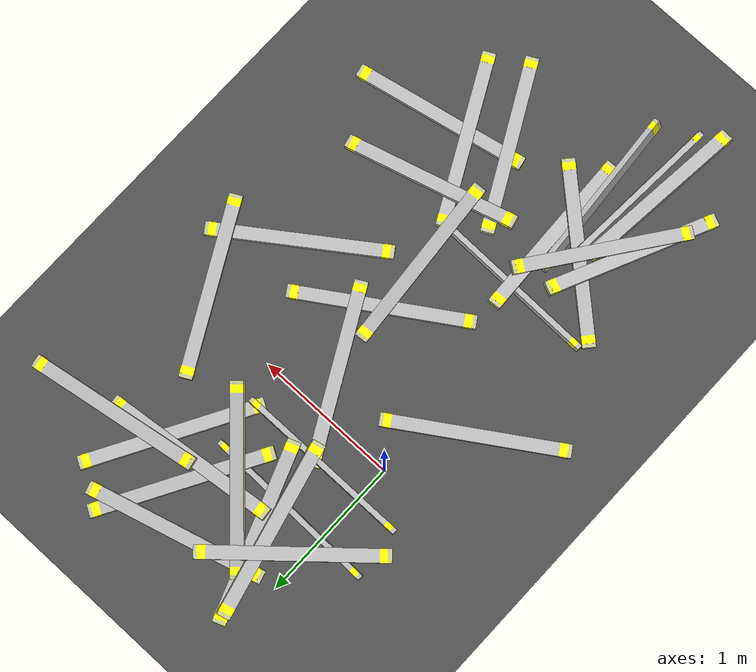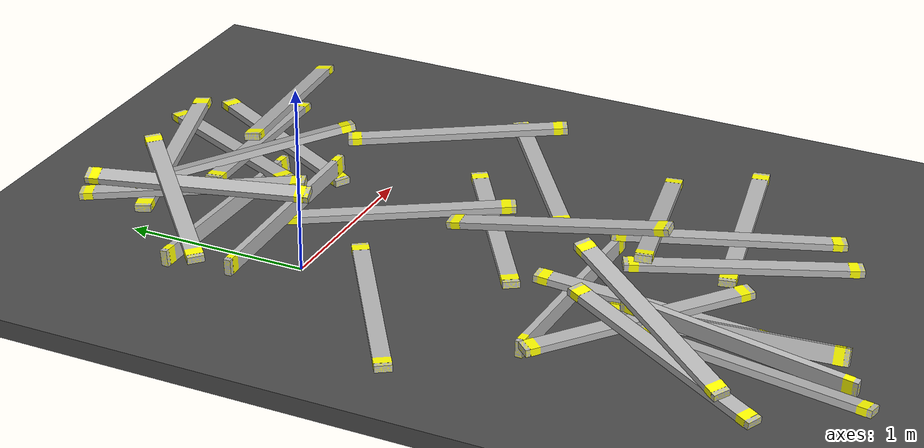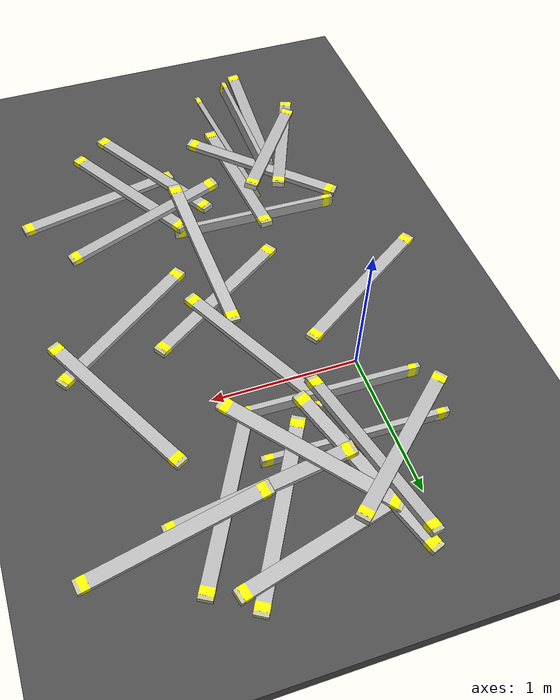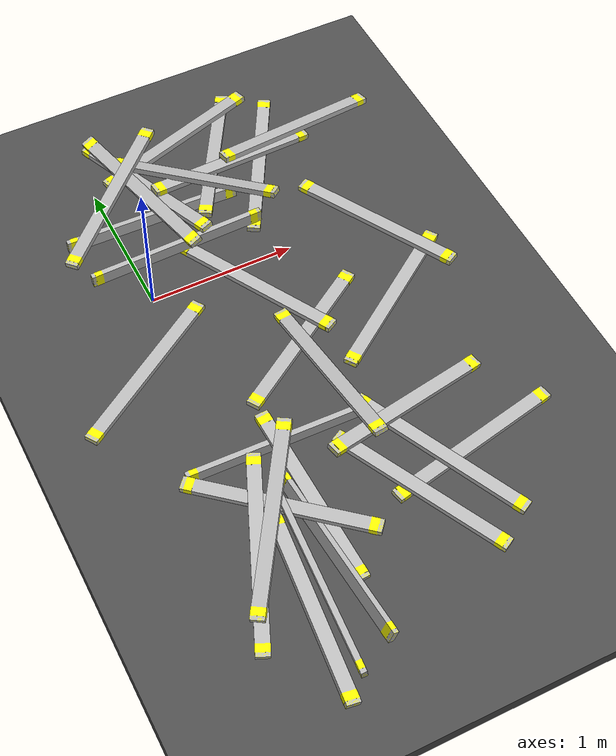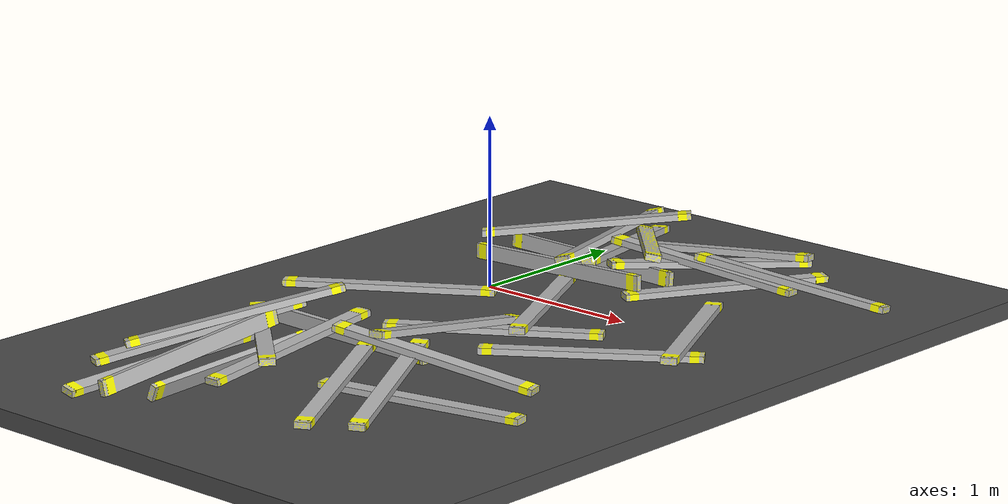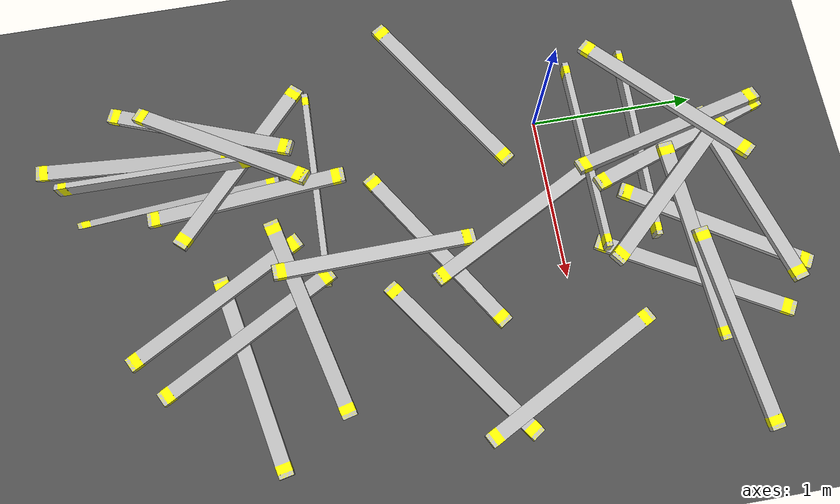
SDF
<sdf version="1.6">
 <world name="default">
  <model name="ground_plane">
   <static>1</static>
   <link name="link">
    <collision name="collision">
     <geometry><plane><normal>0 0 1</normal><size>100 100</size></plane></geometry>
     <surface><friction><ode><mu>100</mu><mu2>50</mu2></ode></friction></surface>
    </collision>
    <visual name="visual">
     <cast_shadows>0</cast_shadows>
     <geometry><plane><normal>0 0 1</normal><size>100 100</size></plane></geometry>
     <material>
      <script><uri>file://media/materials/scripts/gazebo.material</uri><name>Gazebo/Grey</name></script>
     </material>
    </visual>
   </link>
  </model>
  <model name="asphalt_plane">
   <static>1</static>
   <link name="link">
    <collision name="collision"><geometry><box><size>20 20 0.1</size></box></geometry></collision>
    <visual name="visual">
     <cast_shadows>0</cast_shadows>
     <geometry><box><size>20 20 0.1</size></box></geometry>
     <material>
      <script>
       <uri>model://asphalt_plane/materials/scripts</uri>
       <uri>model://asphalt_plane/materials/textures</uri>
       <name>vrc/asphalt</name>
      </script>
     </material>
    </visual>
   </link>
   <pose>0.013797 -0.037077 0 0 -0 0</pose>
  </model>
  <model name="lumber_2x4x48">
   <link name="link">
    <inertial>
     <mass>1.4111</mass>
     <inertia><ixx>0.0011</ixx><ixy>0</ixy><ixz>0</ixz><iyy>0.1771</iyy><iyz>0</iyz><izz>0.1763</izz></inertia>
    </inertial>
    <collision name="collision">
     <geometry><box><size>1.2192 0.038 0.0888</size></box></geometry>
     <surface>
      <bounce><restitution_coefficient>0.01</restitution_coefficient><threshold>5</threshold></bounce>
      <friction><ode><mu>5</mu><mu2>5</mu2></ode></friction>
      <contact>
       <ode>
        <soft_cfm>0.001</soft_cfm>
        <kp>10000</kp>
        <kd>1000</kd>
        <max_vel>0.01</max_vel>
        <min_depth>0.001</min_depth>
       </ode>
      </contact>
     </surface>
    </collision>
    <visual name="visual">
     <geometry><mesh><uri>model://drc_practice_2x4/meshes/2x4x48.dae</uri><scale>1 1 1</scale></mesh></geometry>
    </visual>
   </link>
   <pose>0.295162 0.248029 0.127197 -0.021107 -0.034619 0.00158</pose>
  </model>
  <model name="lumber_2x4x48_clone_1">
   <link name="link">
    <inertial>
     <mass>1.4111</mass>
     <inertia><ixx>0.0011</ixx><ixy>0</ixy><ixz>0</ixz><iyy>0.1771</iyy><iyz>0</iyz><izz>0.1763</izz></inertia>
    </inertial>
    <collision name="collision">
     <geometry><box><size>1.2192 0.038 0.0888</size></box></geometry>
     <surface>
      <bounce><restitution_coefficient>0.01</restitution_coefficient><threshold>5</threshold></bounce>
      <friction><ode><mu>5</mu><mu2>5</mu2></ode></friction>
      <contact>
       <ode>
        <soft_cfm>0.001</soft_cfm>
        <kp>10000</kp>
        <kd>1000</kd>
        <max_vel>0.01</max_vel>
        <min_depth>0.001</min_depth>
       </ode>
      </contact>
     </surface>
    </collision>
    <visual name="visual">
     <geometry><mesh><uri>model://drc_practice_2x4/meshes/2x4x48.dae</uri><scale>1 1 1</scale></mesh></geometry>
    </visual>
   </link>
   <pose>0.259902 0.583143 0.090707 -0.090633 0.00018 -0.021321</pose>
  </model>
  <model name="lumber_2x4x48_clone_3_clone_0">
   <link name="link">
    <inertial>
     <mass>1.4111</mass>
     <inertia><ixx>0.0011</ixx><ixy>0</ixy><ixz>0</ixz><iyy>0.1771</iyy><iyz>0</iyz><izz>0.1763</izz></inertia>
    </inertial>
    <collision name="collision">
     <geometry><box><size>1.2192 0.038 0.0888</size></box></geometry>
     <surface>
      <bounce><restitution_coefficient>0.01</restitution_coefficient><threshold>5</threshold></bounce>
      <friction><ode><mu>5</mu><mu2>5</mu2></ode></friction>
      <contact>
       <ode>
        <soft_cfm>0.001</soft_cfm>
        <kp>10000</kp>
        <kd>1000</kd>
        <max_vel>0.01</max_vel>
        <min_depth>0.001</min_depth>
       </ode>
      </contact>
     </surface>
    </collision>
    <visual name="visual">
     <geometry><mesh><uri>model://drc_practice_2x4/meshes/2x4x48.dae</uri><scale>1 1 1</scale></mesh></geometry>
    </visual>
   </link>
   <pose>0.049031 0.776383 0.2204 1.51434 -0.090281 0.729362</pose>
  </model>
  <model name="lumber_2x4x48_clone_3_clone_0_clone_0_clone_0">
   <link name="link">
    <inertial>
     <mass>1.4111</mass>
     <inertia><ixx>0.0011</ixx><ixy>0</ixy><ixz>0</ixz><iyy>0.1771</iyy><iyz>0</iyz><izz>0.1763</izz></inertia>
    </inertial>
    <collision name="collision">
     <geometry><box><size>1.2192 0.038 0.0888</size></box></geometry>
     <surface>
      <bounce><restitution_coefficient>0.01</restitution_coefficient><threshold>5</threshold></bounce>
      <friction><ode><mu>5</mu><mu2>5</mu2></ode></friction>
      <contact>
       <ode>
        <soft_cfm>0.001</soft_cfm>
        <kp>10000</kp>
        <kd>1000</kd>
        <max_vel>0.01</max_vel>
        <min_depth>0.001</min_depth>
       </ode>
      </contact>
     </surface>
    </collision>
    <visual name="visual">
     <geometry><mesh><uri>model://drc_practice_2x4/meshes/2x4x48.dae</uri><scale>1 1 1</scale></mesh></geometry>
    </visual>
   </link>
   <pose>0.02604 -1.83346 0.15279 1.54393 0.042963 2.41157</pose>
  </model>
  <model name="lumber_2x4x48_clone_0_clone_0">
   <link name="link">
    <inertial>
     <mass>1.4111</mass>
     <inertia><ixx>0.0011</ixx><ixy>0</ixy><ixz>0</ixz><iyy>0.1771</iyy><iyz>0</iyz><izz>0.1763</izz></inertia>
    </inertial>
    <collision name="collision">
     <geometry><box><size>1.2192 0.038 0.0888</size></box></geometry>
     <surface>
      <bounce><restitution_coefficient>0.01</restitution_coefficient><threshold>5</threshold></bounce>
      <friction><ode><mu>5</mu><mu2>5</mu2></ode></friction>
      <contact>
       <ode>
        <soft_cfm>0.001</soft_cfm>
        <kp>10000</kp>
        <kd>1000</kd>
        <max_vel>0.01</max_vel>
        <min_depth>0.001</min_depth>
       </ode>
      </contact>
     </surface>
    </collision>
    <visual name="visual">
     <geometry><mesh><uri>model://drc_practice_2x4/meshes/2x4x48.dae</uri><scale>1 1 1</scale></mesh></geometry>
    </visual>
   </link>
   <pose>0.224647 -1.40223 0.092206 -0.000321 0.001309 -0.021187</pose>
  </model>
  <model name="lumber_2x4x48_clone_3_clone_0_clone_1_clone_clone">
   <link name="link">
    <inertial>
     <mass>1.4111</mass>
     <inertia><ixx>0.0011</ixx><ixy>0</ixy><ixz>0</ixz><iyy>0.1771</iyy><iyz>0</iyz><izz>0.1763</izz></inertia>
    </inertial>
    <collision name="collision">
     <geometry><box><size>1.2192 0.038 0.0888</size></box></geometry>
     <surface>
      <bounce><restitution_coefficient>0.01</restitution_coefficient><threshold>5</threshold></bounce>
      <friction><ode><mu>5</mu><mu2>5</mu2></ode></friction>
      <contact>
       <ode>
        <soft_cfm>0.001</soft_cfm>
        <kp>10000</kp>
        <kd>1000</kd>
        <max_vel>0.01</max_vel>
        <min_depth>0.001</min_depth>
       </ode>
      </contact>
     </surface>
    </collision>
    <visual name="visual">
     <geometry><mesh><uri>model://drc_practice_2x4/meshes/2x4x48.dae</uri><scale>1 1 1</scale></mesh></geometry>
    </visual>
   </link>
   <pose>0.004607 -2.34881 0.162598 -0.144564 -0.111218 1.52281</pose>
  </model>
  <model name="lumber_2x4x48_clone_3_clone_0_clone_clone_0">
   <link name="link">
    <inertial>
     <mass>1.4111</mass>
     <inertia><ixx>0.0011</ixx><ixy>0</ixy><ixz>0</ixz><iyy>0.1771</iyy><iyz>0</iyz><izz>0.1763</izz></inertia>
    </inertial>
    <collision name="collision">
     <geometry><box><size>1.2192 0.038 0.0888</size></box></geometry>
     <surface>
      <bounce><restitution_coefficient>0.01</restitution_coefficient><threshold>5</threshold></bounce>
      <friction><ode><mu>5</mu><mu2>5</mu2></ode></friction>
      <contact>
       <ode>
        <soft_cfm>0.001</soft_cfm>
        <kp>10000</kp>
        <kd>1000</kd>
        <max_vel>0.01</max_vel>
        <min_depth>0.001</min_depth>
       </ode>
      </contact>
     </surface>
    </collision>
    <visual name="visual">
     <geometry><mesh><uri>model://drc_practice_2x4/meshes/2x4x48.dae</uri><scale>1 1 1</scale></mesh></geometry>
    </visual>
   </link>
   <pose>1.39218 -0.71252 0.067433 1.56623 0.000289 0.613655</pose>
  </model>
  <model name="lumber_2x4x48_clone_3_clone_0_clone_1_clone_0">
   <link name="link">
    <inertial>
     <mass>1.4111</mass>
     <inertia><ixx>0.0011</ixx><ixy>0</ixy><ixz>0</ixz><iyy>0.1771</iyy><iyz>0</iyz><izz>0.1763</izz></inertia>
    </inertial>
    <collision name="collision">
     <geometry><box><size>1.2192 0.038 0.0888</size></box></geometry>
     <surface>
      <bounce><restitution_coefficient>0.01</restitution_coefficient><threshold>5</threshold></bounce>
      <friction><ode><mu>5</mu><mu2>5</mu2></ode></friction>
      <contact>
       <ode>
        <soft_cfm>0.001</soft_cfm>
        <kp>10000</kp>
        <kd>1000</kd>
        <max_vel>0.01</max_vel>
        <min_depth>0.001</min_depth>
       </ode>
      </contact>
     </surface>
    </collision>
    <visual name="visual">
     <geometry><mesh><uri>model://drc_practice_2x4/meshes/2x4x48.dae</uri><scale>1 1 1</scale></mesh></geometry>
    </visual>
   </link>
   <pose>0.252808 0.755483 0.197803 1.29786 0.007725 1.81488</pose>
  </model>
  <model name="lumber_2x4x48_clone_3_clone_0_clone_1_clone_1">
   <link name="link">
    <inertial>
     <mass>1.4111</mass>
     <inertia><ixx>0.0011</ixx><ixy>0</ixy><ixz>0</ixz><iyy>0.1771</iyy><iyz>0</iyz><izz>0.1763</izz></inertia>
    </inertial>
    <collision name="collision">
     <geometry><box><size>1.2192 0.038 0.0888</size></box></geometry>
     <surface>
      <bounce><restitution_coefficient>0.01</restitution_coefficient><threshold>5</threshold></bounce>
      <friction><ode><mu>5</mu><mu2>5</mu2></ode></friction>
      <contact>
       <ode>
        <soft_cfm>0.001</soft_cfm>
        <kp>10000</kp>
        <kd>1000</kd>
        <max_vel>0.01</max_vel>
        <min_depth>0.001</min_depth>
       </ode>
      </contact>
     </surface>
    </collision>
    <visual name="visual">
     <geometry><mesh><uri>model://drc_practice_2x4/meshes/2x4x48.dae</uri><scale>1 1 1</scale></mesh></geometry>
    </visual>
   </link>
   <pose>-0.099534 -2.46993 0.110076 -1.72847 0.050516 -1.66477</pose>
  </model>
  <model name="lumber_2x4x48_clone_3_clone_0_clone_1_clone_2">
   <link name="link">
    <inertial>
     <mass>1.4111</mass>
     <inertia><ixx>0.0011</ixx><ixy>0</ixy><ixz>0</ixz><iyy>0.1771</iyy><iyz>0</iyz><izz>0.1763</izz></inertia>
    </inertial>
    <collision name="collision">
     <geometry><box><size>1.2192 0.038 0.0888</size></box></geometry>
     <surface>
      <bounce><restitution_coefficient>0.01</restitution_coefficient><threshold>5</threshold></bounce>
      <friction><ode><mu>5</mu><mu2>5</mu2></ode></friction>
      <contact>
       <ode>
        <soft_cfm>0.001</soft_cfm>
        <kp>10000</kp>
        <kd>1000</kd>
        <max_vel>0.01</max_vel>
        <min_depth>0.001</min_depth>
       </ode>
      </contact>
     </surface>
    </collision>
    <visual name="visual">
     <geometry><mesh><uri>model://drc_practice_2x4/meshes/2x4x48.dae</uri><scale>1 1 1</scale></mesh></geometry>
    </visual>
   </link>
   <pose>0.223188 -1.82577 0.118333 -1.56593 0.083781 -1.52177</pose>
  </model>
  <model name="lumber_2x4x48_clone_3_clone_0_clone_clone_0_clone_0_clone">
   <link name="link">
    <inertial>
     <mass>1.4111</mass>
     <inertia><ixx>0.0011</ixx><ixy>0</ixy><ixz>0</ixz><iyy>0.1771</iyy><iyz>0</iyz><izz>0.1763</izz></inertia>
    </inertial>
    <collision name="collision">
     <geometry><box><size>1.2192 0.038 0.0888</size></box></geometry>
     <surface>
      <bounce><restitution_coefficient>0.01</restitution_coefficient><threshold>5</threshold></bounce>
      <friction><ode><mu>5</mu><mu2>5</mu2></ode></friction>
      <contact>
       <ode>
        <soft_cfm>0.001</soft_cfm>
        <kp>10000</kp>
        <kd>1000</kd>
        <max_vel>0.01</max_vel>
        <min_depth>0.001</min_depth>
       </ode>
      </contact>
     </surface>
    </collision>
    <visual name="visual">
     <geometry><mesh><uri>model://drc_practice_2x4/meshes/2x4x48.dae</uri><scale>1 1 1</scale></mesh></geometry>
    </visual>
   </link>
   <pose>0.610428 0.67443 0.235959 -1.77974 -0.141071 -0.822821</pose>
  </model>
  <model name="lumber_2x4x48_clone_3_clone_0_clone_clone_0_clone_0_clone_4">
   <link name="link">
    <inertial>
     <mass>1.4111</mass>
     <inertia><ixx>0.0011</ixx><ixy>0</ixy><ixz>0</ixz><iyy>0.1771</iyy><iyz>0</iyz><izz>0.1763</izz></inertia>
    </inertial>
    <collision name="collision">
     <geometry><box><size>1.2192 0.038 0.0888</size></box></geometry>
     <surface>
      <bounce><restitution_coefficient>0.01</restitution_coefficient><threshold>5</threshold></bounce>
      <friction><ode><mu>5</mu><mu2>5</mu2></ode></friction>
      <contact>
       <ode>
        <soft_cfm>0.001</soft_cfm>
        <kp>10000</kp>
        <kd>1000</kd>
        <max_vel>0.01</max_vel>
        <min_depth>0.001</min_depth>
       </ode>
      </contact>
     </surface>
    </collision>
    <visual name="visual">
     <geometry><mesh><uri>model://drc_practice_2x4/meshes/2x4x48.dae</uri><scale>1 1 1</scale></mesh></geometry>
    </visual>
   </link>
   <pose>1.05452 -1.9139 0.112094 -1.57392 0.073208 -1.0873</pose>
  </model>
  <model name="lumber_2x4x48_clone_3_clone_0_clone_clone_0_clone_0_clone_5">
   <link name="link">
    <inertial>
     <mass>1.4111</mass>
     <inertia><ixx>0.0011</ixx><ixy>0</ixy><ixz>0</ixz><iyy>0.1771</iyy><iyz>0</iyz><izz>0.1763</izz></inertia>
    </inertial>
    <collision name="collision">
     <geometry><box><size>1.2192 0.038 0.0888</size></box></geometry>
     <surface>
      <bounce><restitution_coefficient>0.01</restitution_coefficient><threshold>5</threshold></bounce>
      <friction><ode><mu>5</mu><mu2>5</mu2></ode></friction>
      <contact>
       <ode>
        <soft_cfm>0.001</soft_cfm>
        <kp>10000</kp>
        <kd>1000</kd>
        <max_vel>0.01</max_vel>
        <min_depth>0.001</min_depth>
       </ode>
      </contact>
     </surface>
    </collision>
    <visual name="visual">
     <geometry><mesh><uri>model://drc_practice_2x4/meshes/2x4x48.dae</uri><scale>1 1 1</scale></mesh></geometry>
    </visual>
   </link>
   <pose>1.59686 -0.113166 0.090618 -1.56747 -0.037506 -1.08266</pose>
  </model>
  <model name="lumber_2x4x48_clone_3_clone_0_clone_clone_0_clone_0_clone_8">
   <link name="link">
    <inertial>
     <mass>1.4111</mass>
     <inertia><ixx>0.0011</ixx><ixy>0</ixy><ixz>0</ixz><iyy>0.1771</iyy><iyz>0</iyz><izz>0.1763</izz></inertia>
    </inertial>
    <collision name="collision">
     <geometry><box><size>1.2192 0.038 0.0888</size></box></geometry>
     <surface>
      <bounce><restitution_coefficient>0.01</restitution_coefficient><threshold>5</threshold></bounce>
      <friction><ode><mu>5</mu><mu2>5</mu2></ode></friction>
      <contact>
       <ode>
        <soft_cfm>0.001</soft_cfm>
        <kp>10000</kp>
        <kd>1000</kd>
        <max_vel>0.01</max_vel>
        <min_depth>0.001</min_depth>
       </ode>
      </contact>
     </surface>
    </collision>
    <visual name="visual">
     <geometry><mesh><uri>model://drc_practice_2x4/meshes/2x4x48.dae</uri><scale>1 1 1</scale></mesh></geometry>
    </visual>
   </link>
   <pose>0.825235 -2.07856 0.101101 1.5869 0.053234 -1.08178</pose>
  </model>
  <model name="lumber_2x4x48_clone_3_clone_0_clone_clone_0_clone_0_clone_10">
   <link name="link">
    <inertial>
     <mass>1.4111</mass>
     <inertia><ixx>0.0011</ixx><ixy>0</ixy><ixz>0</ixz><iyy>0.1771</iyy><iyz>0</iyz><izz>0.1763</izz></inertia>
    </inertial>
    <collision name="collision">
     <geometry><box><size>1.2192 0.038 0.0888</size></box></geometry>
     <surface>
      <bounce><restitution_coefficient>0.01</restitution_coefficient><threshold>5</threshold></bounce>
      <friction><ode><mu>5</mu><mu2>5</mu2></ode></friction>
      <contact>
       <ode>
        <soft_cfm>0.001</soft_cfm>
        <kp>10000</kp>
        <kd>1000</kd>
        <max_vel>0.01</max_vel>
        <min_depth>0.001</min_depth>
       </ode>
      </contact>
     </surface>
    </collision>
    <visual name="visual">
     <geometry><mesh><uri>model://drc_practice_2x4/meshes/2x4x48.dae</uri><scale>1 1 1</scale></mesh></geometry>
    </visual>
   </link>
   <pose>0.312668 0.824807 0.137529 -1.52641 -0.102045 -1.22022</pose>
  </model>
  <model name="lumber_2x4x48_clone_3_clone_0_clone_clone_0_clone_0_clone_11">
   <link name="link">
    <inertial>
     <mass>1.4111</mass>
     <inertia><ixx>0.0011</ixx><ixy>0</ixy><ixz>0</ixz><iyy>0.1771</iyy><iyz>0</iyz><izz>0.1763</izz></inertia>
    </inertial>
    <collision name="collision">
     <geometry><box><size>1.2192 0.038 0.0888</size></box></geometry>
     <surface>
      <bounce><restitution_coefficient>0.01</restitution_coefficient><threshold>5</threshold></bounce>
      <friction><ode><mu>5</mu><mu2>5</mu2></ode></friction>
      <contact>
       <ode>
        <soft_cfm>0.001</soft_cfm>
        <kp>10000</kp>
        <kd>1000</kd>
        <max_vel>0.01</max_vel>
        <min_depth>0.001</min_depth>
       </ode>
      </contact>
     </surface>
    </collision>
    <visual name="visual">
     <geometry><mesh><uri>model://drc_practice_2x4/meshes/2x4x48.dae</uri><scale>1 1 1</scale></mesh></geometry>
    </visual>
   </link>
   <pose>-0.231287 -2.0553 0.161393 1.56429 0.154878 -1.9788</pose>
  </model>
  <model name="lumber_2x4x48_clone_3_clone_0_clone_clone_0_clone_0_clone_11_clone">
   <link name="link">
    <inertial>
     <mass>1.4111</mass>
     <inertia><ixx>0.0011</ixx><ixy>0</ixy><ixz>0</ixz><iyy>0.1771</iyy><iyz>0</iyz><izz>0.1763</izz></inertia>
    </inertial>
    <collision name="collision">
     <geometry><box><size>1.2192 0.038 0.0888</size></box></geometry>
     <surface>
      <bounce><restitution_coefficient>0.01</restitution_coefficient><threshold>5</threshold></bounce>
      <friction><ode><mu>5</mu><mu2>5</mu2></ode></friction>
      <contact>
       <ode>
        <soft_cfm>0.001</soft_cfm>
        <kp>10000</kp>
        <kd>1000</kd>
        <max_vel>0.01</max_vel>
        <min_depth>0.001</min_depth>
       </ode>
      </contact>
     </surface>
    </collision>
    <visual name="visual">
     <geometry><mesh><uri>model://drc_practice_2x4/meshes/2x4x48.dae</uri><scale>1 1 1</scale></mesh></geometry>
    </visual>
   </link>
   <pose>-0.082877 -1.92974 0.251862 1.68721 0.192333 -2.16101</pose>
  </model>
  <model name="lumber_2x4x48_clone_3_clone_0_clone_clone_0_clone_0_clone_11_clone_11">
   <link name="link">
    <inertial>
     <mass>1.4111</mass>
     <inertia><ixx>0.0011</ixx><ixy>0</ixy><ixz>0</ixz><iyy>0.1771</iyy><iyz>0</iyz><izz>0.1763</izz></inertia>
    </inertial>
    <collision name="collision">
     <geometry><box><size>1.2192 0.038 0.0888</size></box></geometry>
     <surface>
      <bounce><restitution_coefficient>0.01</restitution_coefficient><threshold>5</threshold></bounce>
      <friction><ode><mu>5</mu><mu2>5</mu2></ode></friction>
      <contact>
       <ode>
        <soft_cfm>0.001</soft_cfm>
        <kp>10000</kp>
        <kd>1000</kd>
        <max_vel>0.01</max_vel>
        <min_depth>0.001</min_depth>
       </ode>
      </contact>
     </surface>
    </collision>
    <visual name="visual">
     <geometry><mesh><uri>model://drc_practice_2x4/meshes/2x4x48.dae</uri><scale>1 1 1</scale></mesh></geometry>
    </visual>
   </link>
   <pose>0.868964 0.914033 0.115344 1.58491 -0.079879 -2.0982</pose>
  </model>
  <model name="lumber_2x4x48_clone_3_clone_0_clone_clone_0_clone_0_clone_11_clone_12">
   <link name="link">
    <inertial>
     <mass>1.4111</mass>
     <inertia><ixx>0.0011</ixx><ixy>0</ixy><ixz>0</ixz><iyy>0.1771</iyy><iyz>0</iyz><izz>0.1763</izz></inertia>
    </inertial>
    <collision name="collision">
     <geometry><box><size>1.2192 0.038 0.0888</size></box></geometry>
     <surface>
      <bounce><restitution_coefficient>0.01</restitution_coefficient><threshold>5</threshold></bounce>
      <friction><ode><mu>5</mu><mu2>5</mu2></ode></friction>
      <contact>
       <ode>
        <soft_cfm>0.001</soft_cfm>
        <kp>10000</kp>
        <kd>1000</kd>
        <max_vel>0.01</max_vel>
        <min_depth>0.001</min_depth>
       </ode>
      </contact>
     </surface>
    </collision>
    <visual name="visual">
     <geometry><mesh><uri>model://drc_practice_2x4/meshes/2x4x48.dae</uri><scale>1 1 1</scale></mesh></geometry>
    </visual>
   </link>
   <pose>1.13114 0.733754 0.067655 1.5708 0 -2.0847</pose>
  </model>
  <model name="lumber_2x4x48_clone_3_clone_0_clone_clone_0_clone_0_clone_11_clone_13">
   <link name="link">
    <inertial>
     <mass>1.4111</mass>
     <inertia><ixx>0.0011</ixx><ixy>0</ixy><ixz>0</ixz><iyy>0.1771</iyy><iyz>0</iyz><izz>0.1763</izz></inertia>
    </inertial>
    <collision name="collision">
     <geometry><box><size>1.2192 0.038 0.0888</size></box></geometry>
     <surface>
      <bounce><restitution_coefficient>0.01</restitution_coefficient><threshold>5</threshold></bounce>
      <friction><ode><mu>5</mu><mu2>5</mu2></ode></friction>
      <contact>
       <ode>
        <soft_cfm>0.001</soft_cfm>
        <kp>10000</kp>
        <kd>1000</kd>
        <max_vel>0.01</max_vel>
        <min_depth>0.001</min_depth>
       </ode>
      </contact>
     </surface>
    </collision>
    <visual name="visual">
     <geometry><mesh><uri>model://drc_practice_2x4/meshes/2x4x48.dae</uri><scale>1 1 1</scale></mesh></geometry>
    </visual>
   </link>
   <pose>0.717142 -0.7491 0.067282 1.57859 -9.2e-05 -2.56666</pose>
  </model>
  <model name="lumber_2x4x48_clone_3_clone_0_clone_clone_0_clone_0_clone_11_clone_14_clone_clone">
   <link name="link">
    <inertial>
     <mass>1.4111</mass>
     <inertia><ixx>0.0011</ixx><ixy>0</ixy><ixz>0</ixz><iyy>0.1771</iyy><iyz>0</iyz><izz>0.1763</izz></inertia>
    </inertial>
    <collision name="collision">
     <geometry><box><size>1.2192 0.038 0.0888</size></box></geometry>
     <surface>
      <bounce><restitution_coefficient>0.01</restitution_coefficient><threshold>5</threshold></bounce>
      <friction><ode><mu>5</mu><mu2>5</mu2></ode></friction>
      <contact>
       <ode>
        <soft_cfm>0.001</soft_cfm>
        <kp>10000</kp>
        <kd>1000</kd>
        <max_vel>0.01</max_vel>
        <min_depth>0.001</min_depth>
       </ode>
      </contact>
     </surface>
    </collision>
    <visual name="visual">
     <geometry><mesh><uri>model://drc_practice_2x4/meshes/2x4x48.dae</uri><scale>1 1 1</scale></mesh></geometry>
    </visual>
   </link>
   <pose>1.28111 -1.9204 0.06726 1.56179 0.000492 -2.93928</pose>
  </model>
  <model name="lumber_2x4x48_clone_3_clone_0_clone_clone_0_clone_0_clone_11_clone_14_clone_clone_0">
   <link name="link">
    <inertial>
     <mass>1.4111</mass>
     <inertia><ixx>0.0011</ixx><ixy>0</ixy><ixz>0</ixz><iyy>0.1771</iyy><iyz>0</iyz><izz>0.1763</izz></inertia>
    </inertial>
    <collision name="collision">
     <geometry><box><size>1.2192 0.038 0.0888</size></box></geometry>
     <surface>
      <bounce><restitution_coefficient>0.01</restitution_coefficient><threshold>5</threshold></bounce>
      <friction><ode><mu>5</mu><mu2>5</mu2></ode></friction>
      <contact>
       <ode>
        <soft_cfm>0.001</soft_cfm>
        <kp>10000</kp>
        <kd>1000</kd>
        <max_vel>0.01</max_vel>
        <min_depth>0.001</min_depth>
       </ode>
      </contact>
     </surface>
    </collision>
    <visual name="visual">
     <geometry><mesh><uri>model://drc_practice_2x4/meshes/2x4x48.dae</uri><scale>1 1 1</scale></mesh></geometry>
    </visual>
   </link>
   <pose>0.685404 1.16672 0.103959 1.66811 0.055185 -2.87344</pose>
  </model>
  <model name="lumber_2x4x48_clone_3_clone_0_clone_clone_0_clone_0_clone_11_clone_14_clone_clone_1">
   <link name="link">
    <inertial>
     <mass>1.4111</mass>
     <inertia><ixx>0.0011</ixx><ixy>0</ixy><ixz>0</ixz><iyy>0.1771</iyy><iyz>0</iyz><izz>0.1763</izz></inertia>
    </inertial>
    <collision name="collision">
     <geometry><box><size>1.2192 0.038 0.0888</size></box></geometry>
     <surface>
      <bounce><restitution_coefficient>0.01</restitution_coefficient><threshold>5</threshold></bounce>
      <friction><ode><mu>5</mu><mu2>5</mu2></ode></friction>
      <contact>
       <ode>
        <soft_cfm>0.001</soft_cfm>
        <kp>10000</kp>
        <kd>1000</kd>
        <max_vel>0.01</max_vel>
        <min_depth>0.001</min_depth>
       </ode>
      </contact>
     </surface>
    </collision>
    <visual name="visual">
     <geometry><mesh><uri>model://drc_practice_2x4/meshes/2x4x48.dae</uri><scale>1 1 1</scale></mesh></geometry>
    </visual>
   </link>
   <pose>0.935878 0.770223 0.148371 1.60663 -0.087291 -3.03888</pose>
  </model>
  <model name="lumber_2x4x48_clone_3_clone_0_clone_clone_0_clone_0_clone_11_clone_14_clone_clone_6">
   <link name="link">
    <inertial>
     <mass>1.4111</mass>
     <inertia><ixx>0.0011</ixx><ixy>0</ixy><ixz>0</ixz><iyy>0.1771</iyy><iyz>0</iyz><izz>0.1763</izz></inertia>
    </inertial>
    <collision name="collision">
     <geometry><box><size>1.2192 0.038 0.0888</size></box></geometry>
     <surface>
      <bounce><restitution_coefficient>0.01</restitution_coefficient><threshold>5</threshold></bounce>
      <friction><ode><mu>5</mu><mu2>5</mu2></ode></friction>
      <contact>
       <ode>
        <soft_cfm>0.001</soft_cfm>
        <kp>10000</kp>
        <kd>1000</kd>
        <max_vel>0.01</max_vel>
        <min_depth>0.001</min_depth>
       </ode>
      </contact>
     </surface>
    </collision>
    <visual name="visual">
     <geometry><mesh><uri>model://drc_practice_2x4/meshes/2x4x48.dae</uri><scale>1 1 1</scale></mesh></geometry>
    </visual>
   </link>
   <pose>1.02461 -1.54283 0.15828 1.53286 -0.144573 -2.9022</pose>
  </model>
  <model name="lumber_2x4x48_clone_3_clone_0_clone_clone_0_clone_0_clone_11_clone_14_clone_clone_7">
   <link name="link">
    <inertial>
     <mass>1.4111</mass>
     <inertia><ixx>0.0011</ixx><ixy>0</ixy><ixz>0</ixz><iyy>0.1771</iyy><iyz>0</iyz><izz>0.1763</izz></inertia>
    </inertial>
    <collision name="collision">
     <geometry><box><size>1.2192 0.038 0.0888</size></box></geometry>
     <surface>
      <bounce><restitution_coefficient>0.01</restitution_coefficient><threshold>5</threshold></bounce>
      <friction><ode><mu>5</mu><mu2>5</mu2></ode></friction>
      <contact>
       <ode>
        <soft_cfm>0.001</soft_cfm>
        <kp>10000</kp>
        <kd>1000</kd>
        <max_vel>0.01</max_vel>
        <min_depth>0.001</min_depth>
       </ode>
      </contact>
     </surface>
    </collision>
    <visual name="visual">
     <geometry><mesh><uri>model://drc_practice_2x4/meshes/2x4x48.dae</uri><scale>1 1 1</scale></mesh></geometry>
    </visual>
   </link>
   <pose>1.483 0.88433 0.132005 1.70204 -0.096399 -2.98537</pose>
  </model>
  <model name="lumber_2x4x48_clone_3_clone_0_clone_clone_0_clone_0_clone_0_clone_1">
   <link name="link">
    <inertial>
     <mass>1.4111</mass>
     <inertia><ixx>0.0011</ixx><ixy>0</ixy><ixz>0</ixz><iyy>0.1771</iyy><iyz>0</iyz><izz>0.1763</izz></inertia>
    </inertial>
    <collision name="collision">
     <geometry><box><size>1.2192 0.038 0.0888</size></box></geometry>
     <surface>
      <bounce><restitution_coefficient>0.01</restitution_coefficient><threshold>5</threshold></bounce>
      <friction><ode><mu>5</mu><mu2>5</mu2></ode></friction>
      <contact>
       <ode>
        <soft_cfm>0.001</soft_cfm>
        <kp>10000</kp>
        <kd>1000</kd>
        <max_vel>0.01</max_vel>
        <min_depth>0.001</min_depth>
       </ode>
      </contact>
     </surface>
    </collision>
    <visual name="visual">
     <geometry><mesh><uri>model://drc_practice_2x4/meshes/2x4x48.dae</uri><scale>1 1 1</scale></mesh></geometry>
    </visual>
   </link>
   <pose>0.177642 -2.22455 0.096514 -0.354168 -7.7e-05 -1.49441</pose>
  </model>
  <model name="lumber_2x4x48_clone_3_clone_0_clone_clone_0_clone_0_clone_0_clone_2">
   <link name="link">
    <inertial>
     <mass>1.4111</mass>
     <inertia><ixx>0.0011</ixx><ixy>0</ixy><ixz>0</ixz><iyy>0.1771</iyy><iyz>0</iyz><izz>0.1763</izz></inertia>
    </inertial>
    <collision name="collision">
     <geometry><box><size>1.2192 0.038 0.0888</size></box></geometry>
     <surface>
      <bounce><restitution_coefficient>0.01</restitution_coefficient><threshold>5</threshold></bounce>
      <friction><ode><mu>5</mu><mu2>5</mu2></ode></friction>
      <contact>
       <ode>
        <soft_cfm>0.001</soft_cfm>
        <kp>10000</kp>
        <kd>1000</kd>
        <max_vel>0.01</max_vel>
        <min_depth>0.001</min_depth>
       </ode>
      </contact>
     </surface>
    </collision>
    <visual name="visual">
     <geometry><mesh><uri>model://drc_practice_2x4/meshes/2x4x48.dae</uri><scale>1 1 1</scale></mesh></geometry>
    </visual>
   </link>
   <pose>0.714437 -1.10925 0.169227 -1.50652 -0.16279 -1.50605</pose>
  </model>
  <model name="lumber_2x4x48_clone_3_clone_0_clone_clone_0_clone_0_clone_5_clone">
   <link name="link">
    <inertial>
     <mass>1.4111</mass>
     <inertia><ixx>0.0011</ixx><ixy>0</ixy><ixz>0</ixz><iyy>0.1771</iyy><iyz>0</iyz><izz>0.1763</izz></inertia>
    </inertial>
    <collision name="collision">
     <geometry><box><size>1.2192 0.038 0.0888</size></box></geometry>
     <surface>
      <bounce><restitution_coefficient>0.01</restitution_coefficient><threshold>5</threshold></bounce>
      <friction><ode><mu>5</mu><mu2>5</mu2></ode></friction>
      <contact>
       <ode>
        <soft_cfm>0.001</soft_cfm>
        <kp>10000</kp>
        <kd>1000</kd>
        <max_vel>0.01</max_vel>
        <min_depth>0.001</min_depth>
       </ode>
      </contact>
     </surface>
    </collision>
    <visual name="visual">
     <geometry><mesh><uri>model://drc_practice_2x4/meshes/2x4x48.dae</uri><scale>1 1 1</scale></mesh></geometry>
    </visual>
   </link>
   <pose>0.629173 -0.243867 0.087512 -1.56569 -0.034312 -1.08099</pose>
  </model>
  <model name="lumber_2x4x48_clone_3_clone_0_clone_clone_0_clone_0_clone_11_clone_13_clone">
   <link name="link">
    <inertial>
     <mass>1.4111</mass>
     <inertia><ixx>0.0011</ixx><ixy>0</ixy><ixz>0</ixz><iyy>0.1771</iyy><iyz>0</iyz><izz>0.1763</izz></inertia>
    </inertial>
    <collision name="collision">
     <geometry><box><size>1.2192 0.038 0.0888</size></box></geometry>
     <surface>
      <bounce><restitution_coefficient>0.01</restitution_coefficient><threshold>5</threshold></bounce>
      <friction><ode><mu>5</mu><mu2>5</mu2></ode></friction>
      <contact>
       <ode>
        <soft_cfm>0.001</soft_cfm>
        <kp>10000</kp>
        <kd>1000</kd>
        <max_vel>0.01</max_vel>
        <min_depth>0.001</min_depth>
       </ode>
      </contact>
     </surface>
    </collision>
    <visual name="visual">
     <geometry><mesh><uri>model://drc_practice_2x4/meshes/2x4x48.dae</uri><scale>1 1 1</scale></mesh></geometry>
    </visual>
   </link>
   <pose>-0.272539 -0.542833 0.067208 1.58041 0.000146 -2.56666</pose>
  </model>
 </world>
</sdf>
